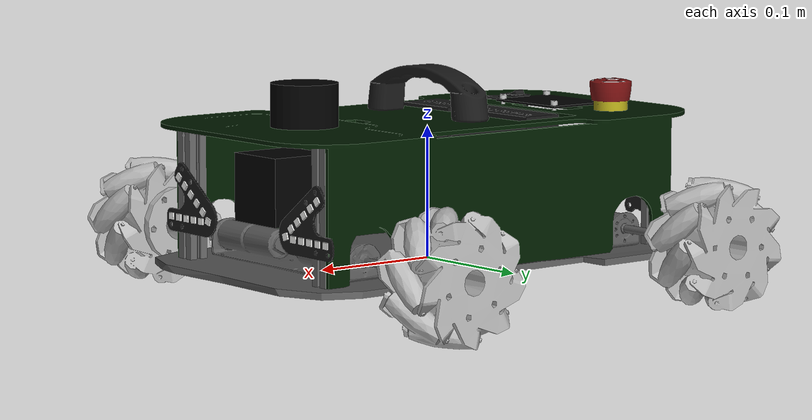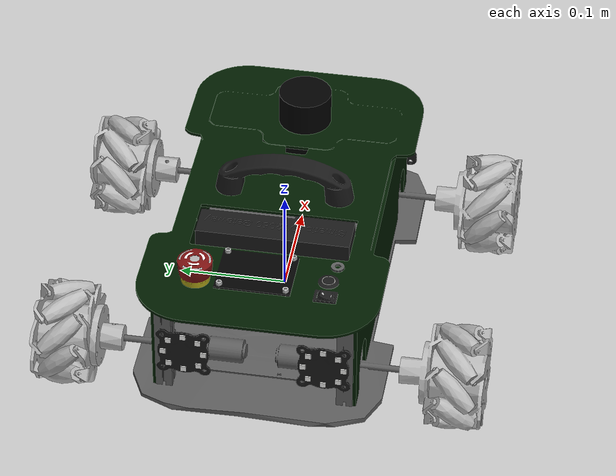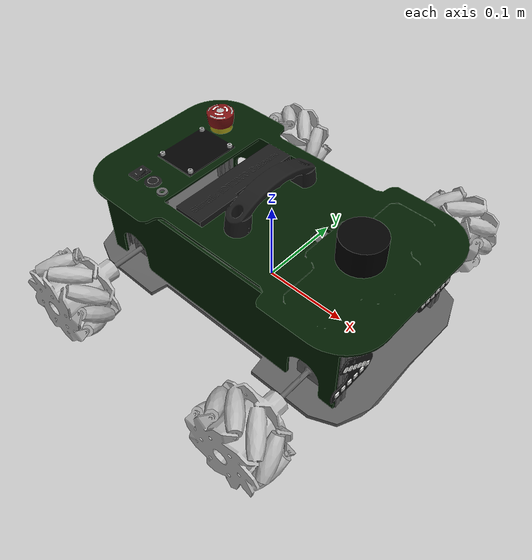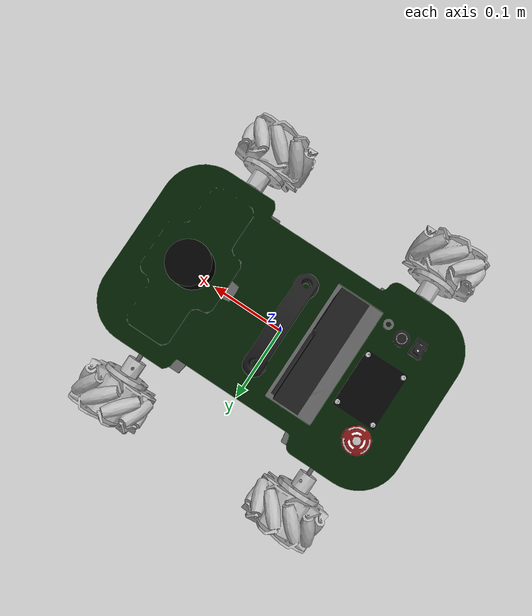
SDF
<?xml version='1.0'?>
<sdf version='1.5'>
  <model name="eduard-green-mecanum">
    <static>true</static>
    <pose>0 0 0 0 0 0</pose>
      <!-- chassis -->
      <link name="chassis">
        <pose>0 0 0 0 0 0</pose>
        <inertial>
          <pose>0 0 0 0 0 0</pose>
          <mass>5.0</mass>
          <inertia>
            <ixx>0.00276</ixx>
            <iyy>0.00882</iyy>
            <izz>0.01119</izz>
            <ixy>0</ixy>
            <ixz>0</ixz>
            <iyz>0</iyz>
          </inertia>
        </inertial>
        <visual name="visual">
          <pose>0 0 0 0 0 1.570796327</pose>
          <geometry>
            <mesh>
              <uri>model://eduard_green_mecanum/mesh/eduard-green-chassis.dae</uri>
            </mesh>
          </geometry>
        </visual>
        <collision name="collision_bottom">
          <pose>0 0 0.01 0 0 0</pose>
          <geometry>
            <box>
              <size>0.38 0.22 0.02</size>
            </box>
          </geometry>
        </collision>
        <collision name="collision_top">
          <pose>0 0 0.1 0 0 0</pose>
          <geometry>
            <box>
              <size>0.38 0.22 0.02</size>
            </box>
          </geometry>
        </collision>
      </link>

      <!-- wheel rear right -->
      <link name="motor_a">
        <pose>-0.125 -0.18 0.02 -1.570796327 0 0</pose>
        <inertial>
          <pose>0 0 0 0 0 0</pose>
          <mass>0.3</mass>
          <inertia>
            <ixx>3.0e-5</ixx>
            <iyy>3.0e-5</iyy>
            <izz>5.0e-5</izz>
            <ixy>0</ixy>
            <ixz>0</ixz>
            <iyz>0</iyz>
          </inertia>
        </inertial>
        <visual name="visual">
          <geometry>
            <mesh>
              <uri>model://eduard_blue_mecanum/mesh/mecanum-wheel-left-eduard.dae</uri>
            </mesh>
          </geometry>
        </visual>
        <collision name="collision">
          <pose>0 0 0 0 0 0</pose>
          <geometry>
            <cylinder>
              <radius>0.05</radius>
              <length>0.055</length>
            </cylinder>
          </geometry>
          <max_contacts>2</max_contacts>
          <surface>
            <friction>
              <torsional>
                <coefficient>0.9</coefficient>
                <surface_radius>0.01</surface_radius>
                <use_patch_radius>true</use_patch_radius>
                <ode>
                  <slip>0.2</slip>
                </ode>
              </torsional>
            </friction>
            <contact>
              <ode>
                <min_depth>0.005</min_depth>
              </ode>
            </contact>
          </surface>
        </collision>
      </link>

      <!-- wheel front right -->
      <link name="motor_b">
        <pose>0.125 -0.18 0.02 -1.570796327 0 0</pose>
        <inertial>
          <pose>0 0 0 0 0 0</pose>
          <mass>0.3</mass>
          <inertia>
            <ixx>3.0e-5</ixx>
            <iyy>3.0e-5</iyy>
            <izz>5.0e-5</izz>
            <ixy>0</ixy>
            <ixz>0</ixz>
            <iyz>0</iyz>
          </inertia>
        </inertial>
        <visual name="visual">
          <geometry>
            <mesh>
              <uri>model://eduard_blue_mecanum/mesh/mecanum-wheel-right-eduard.dae</uri>
            </mesh>
          </geometry>
        </visual>
        <collision name="collision">
          <pose>0 0 0 0 0 0</pose>
          <geometry>
            <cylinder>
              <radius>0.05</radius>
              <length>0.055</length>
            </cylinder>
          </geometry>
          <max_contacts>2</max_contacts>
          <surface>
            <friction>
              <torsional>
                <coefficient>0.9</coefficient>
                <surface_radius>0.01</surface_radius>
                <use_patch_radius>true</use_patch_radius>
                <ode>
                  <slip>0.2</slip>
                </ode>
              </torsional>
            </friction>
            <contact>
              <ode>
                <min_depth>0.005</min_depth>
              </ode>
            </contact>
          </surface>
        </collision>
      </link>

      <!-- wheel rear left -->
      <link name="motor_c">
        <pose>-0.125 0.18 0.02 1.570796327 0 0</pose>
        <inertial>
          <pose>0 0 0 0 0 0</pose>
          <mass>0.3</mass>
          <inertia>
            <ixx>3.0e-5</ixx>
            <iyy>3.0e-5</iyy>
            <izz>5.0e-5</izz>
            <ixy>0</ixy>
            <ixz>0</ixz>
            <iyz>0</iyz>
          </inertia>
        </inertial>
        <visual name="visual">
          <geometry>
            <mesh>
              <uri>model://eduard_blue_mecanum/mesh/mecanum-wheel-right-eduard.dae</uri>
            </mesh>
          </geometry>
        </visual>
        <collision name="collision">
          <pose>0 0 0 0 0 0</pose>
          <geometry>
            <cylinder>
              <radius>0.05</radius>
              <length>0.055</length>
            </cylinder>
          </geometry>
          <max_contacts>2</max_contacts>
          <surface>
            <friction>
              <torsional>
                <coefficient>0.9</coefficient>
                <surface_radius>0.01</surface_radius>
                <use_patch_radius>true</use_patch_radius>
                <ode>
                  <slip>0.2</slip>
                </ode>
              </torsional>
            </friction>
            <contact>
              <ode>
                <min_depth>0.005</min_depth>
              </ode>
            </contact>
          </surface>
        </collision>
      </link>

      <!-- wheel front left -->
      <link name="motor_d">
        <pose>0.125 0.18 0.02 1.570796327 0 0</pose>
        <inertial>
          <pose>0 0 0 0 0 0</pose>
          <mass>0.3</mass>
          <inertia>
            <ixx>3.0e-5</ixx>
            <iyy>3.0e-5</iyy>
            <izz>5.0e-5</izz>
            <ixy>0</ixy>
            <ixz>0</ixz>
            <iyz>0</iyz>
          </inertia>
        </inertial>
        <visual name="visual">
          <geometry>
            <mesh>
              <uri>model://eduard_blue_mecanum/mesh/mecanum-wheel-left-eduard.dae</uri>
            </mesh>
          </geometry>
        </visual>
        <collision name="collision">
          <pose>0 0 0 0 0 0</pose>
          <geometry>
            <cylinder>
              <radius>0.05</radius>
              <length>0.055</length>
            </cylinder>
          </geometry>
          <max_contacts>2</max_contacts>
          <surface>
            <friction>
              <torsional>
                <coefficient>0.9</coefficient>
                <surface_radius>0.01</surface_radius>
                <use_patch_radius>true</use_patch_radius>
                <ode>
                  <slip>0.2</slip>
                </ode>
              </torsional>
            </friction>
            <contact>
              <ode>
                <min_depth>0.005</min_depth>
              </ode>
            </contact>
          </surface>
        </collision>
      </link>

      <!-- Range Sensors -->
      <!-- Front Left-->
      <link name="range_front_left">
        <pose>0.17 0.063 0.045 0 0 0</pose>
        <inertial>
          <pose>0 0 0 0 0 0</pose>
          <mass>0.1</mass>
          <inertia>
            <ixx>3.0e-6</ixx>
            <iyy>3.0e-6</iyy>
            <izz>5.0e-6</izz>
            <ixy>0</ixy>
            <ixz>0</ixz>
            <iyz>0</iyz>
          </inertia>
        </inertial>
        <sensor name="range/front/left" type="ray">
          <visualize>false</visualize>
          <ray>
            <scan>
              <horizontal>
                <min_angle>-0.08726646</min_angle>
                <max_angle> 0.08726646</max_angle>
                <samples>4</samples>
              </horizontal>
              <vertical>
                <min_angle>-0.04363323</min_angle>
                <max_angle> 0.04363323</max_angle>
                <samples>2</samples>
              </vertical>
            </scan>
            <range>
              <min>0.01</min>
              <max>2.0</max>
            </range>
            <noise>
              <type>gaussian</type>
              <stddev>0.0025</stddev>
            </noise>
          </ray>
        </sensor>
      </link>
      <!-- Front Right-->
      <link name="range_front_right">
        <pose>0.17 -0.063 0.045 0 0 0</pose>
        <inertial>
          <pose>0 0 0 0 0 0</pose>
          <mass>0.1</mass>
          <inertia>
            <ixx>3.0e-6</ixx>
            <iyy>3.0e-6</iyy>
            <izz>5.0e-6</izz>
            <ixy>0</ixy>
            <ixz>0</ixz>
            <iyz>0</iyz>
          </inertia>
        </inertial>
        <sensor name="range/front/right" type="ray">
          <visualize>false</visualize>
          <ray>
            <scan>
              <horizontal>
                <min_angle>-0.08726646</min_angle>
                <max_angle> 0.08726646</max_angle>
                <samples>4</samples>
              </horizontal>
              <vertical>
                <min_angle>-0.04363323</min_angle>
                <max_angle> 0.04363323</max_angle>
                <samples>2</samples>
              </vertical>
            </scan>
            <range>
              <min>0.01</min>
              <max>2.0</max>
            </range>
            <noise>
              <type>gaussian</type>
              <stddev>0.0025</stddev>
            </noise>
          </ray>
        </sensor>
      </link>
      <!-- Rear Left -->
      <link name="range_rear_left">
        <pose>-0.17 0.063 0.05 0 0 3.141592654</pose>
        <inertial>
          <pose>0 0 0 0 0 0</pose>
          <mass>0.1</mass>
          <inertia>
            <ixx>3.0e-6</ixx>
            <iyy>3.0e-6</iyy>
            <izz>5.0e-6</izz>
            <ixy>0</ixy>
            <ixz>0</ixz>
            <iyz>0</iyz>
          </inertia>
        </inertial>
        <sensor name="range/rear/left" type="ray">
          <visualize>false</visualize>
          <ray>
            <scan>
              <horizontal>
                <min_angle>-0.08726646</min_angle>
                <max_angle> 0.08726646</max_angle>
                <samples>4</samples>
              </horizontal>
              <vertical>
                <min_angle>-0.04363323</min_angle>
                <max_angle> 0.04363323</max_angle>
                <samples>2</samples>
              </vertical>
            </scan>
            <range>
              <min>0.01</min>
              <max>2.0</max>
            </range>
            <noise>
              <type>gaussian</type>
              <stddev>0.0025</stddev>
            </noise>
          </ray>
        </sensor>
      </link>
      <!-- Rear Right-->
      <link name="range_rear_right">
        <pose>-0.17 -0.063 0.05 0 0 3.141592654</pose>
        <inertial>
          <pose>0 0 0 0 0 0</pose>
          <mass>0.1</mass>
          <inertia>
            <ixx>3.0e-6</ixx>
            <iyy>3.0e-6</iyy>
            <izz>5.0e-6</izz>
            <ixy>0</ixy>
            <ixz>0</ixz>
            <iyz>0</iyz>
          </inertia>
        </inertial>
        <sensor name="range/rear/right" type="ray">
          <visualize>false</visualize>
          <ray>
            <scan>
              <horizontal>
                <min_angle>-0.08726646</min_angle>
                <max_angle> 0.08726646</max_angle>
                <samples>4</samples>
              </horizontal>
              <vertical>
                <min_angle>-0.04363323</min_angle>
                <max_angle> 0.04363323</max_angle>
                <samples>2</samples>
              </vertical>
            </scan>
            <range>
              <min>0.01</min>
              <max>2.0</max>
            </range>
            <noise>
              <type>gaussian</type>
              <stddev>0.0025</stddev>
            </noise>
          </ray>
        </sensor>
      </link>

      <!-- IMU Sensor -->
      <link name="imu">
        <pose>0 0 0 0 0 0</pose>
        <inertial>
          <pose>0 0 0 0 0 0</pose>
          <mass>0.1</mass>
          <inertia>
            <ixx>3.0e-6</ixx>
            <iyy>3.0e-6</iyy>
            <izz>5.0e-6</izz>
            <ixy>0</ixy>
            <ixz>0</ixz>
            <iyz>0</iyz>
          </inertia>
        </inertial>
        <sensor name="imu" type="imu">
          <update_rate>10</update_rate>
          <visualize>false</visualize>
        </sensor>
      </link>

      <!-- LIDAR Sensor -->
      <link name="lidar">
        <pose>0.115 0 0.12 0 0 0</pose>
        <inertial>
          <inertia>
            <ixx>3.0e-6</ixx>
            <iyy>3.0e-6</iyy>
            <izz>5.0e-6</izz>
            <ixy>0</ixy>
            <ixz>0</ixz>
            <iyz>0</iyz>
          </inertia>
          <mass>0.3</mass>
        </inertial>

        <collision name="collision">
          <geometry>
            <cylinder>
              <radius>0.025</radius>
              <length>0.04</length>
            </cylinder>
          </geometry>
        </collision>

        <visual name="visual">
          <geometry>
            <cylinder>
              <radius>0.025</radius>
              <length>0.04</length>
            </cylinder>
          </geometry>
          <material>
            <ambient>0.0 0.0 0.0 1.0</ambient>
            <diffuse>0.0 0.0 0.0 1.0</diffuse>
            <specular>0.0 0.0 0.0 1.0</specular>
            <emissive>0.0 0.0 0.0 1.0</emissive>
          </material>
        </visual>

        <sensor name="lidar" type="ray">
          <pose>0 0 0.01 0 0 0</pose>
          <always_on>true</always_on>
          <visualize>false</visualize>
          <update_rate>10</update_rate>
          <ray>
            <scan>
              <horizontal>
                <samples>360</samples>
                <resolution>1.00000</resolution>
                <min_angle>0.000000</min_angle>
                <max_angle>6.280000</max_angle>
              </horizontal>
            </scan>
            <range>
              <min>0.15</min>
              <max>12.0</max>
              <resolution>0.015000</resolution>
            </range>
            <noise>
              <type>gaussian</type>
              <mean>0.0</mean>
              <stddev>0.01</stddev>
            </noise>
          </ray>
          <plugin name="eduard_green_scan" filename="libgazebo_ros_ray_sensor.so">
            <ros>
              <remapping>~/out:=/eduard/green/scan</remapping>
            </ros>
            <output_type>sensor_msgs/LaserScan</output_type>
            <frame_name>eduard/green/laser</frame_name>
          </plugin>
        </sensor>
      </link>

      <!-- Oliva Cam -->
      <link name="olive_camera_link_eduard_green">
        <pose>0.135 0 0.065 0 0 0</pose>
        <inertial>
          <inertia>
            <ixx>3.0e-6</ixx>
            <iyy>3.0e-6</iyy>
            <izz>5.0e-6</izz>
            <ixy>0</ixy>
            <ixz>0</ixz>
            <iyz>0</iyz>
          </inertia>
          <mass>0.3</mass>
        </inertial>

        <collision name="collision">
          <geometry>
            <box>
              <size>0.05 0.05 0.05</size>
            </box>
          </geometry>
        </collision>

        <visual name="visual">
          <geometry>
            <box>
              <size>0.05 0.05 0.05</size>
            </box>
          </geometry>
          <material>
            <ambient>0.0 0.0 0.0 1.0</ambient>
            <diffuse>0.0 0.0 0.0 1.0</diffuse>
            <specular>0.0 0.0 0.0 1.0</specular>
            <emissive>0.0 0.0 0.0 1.0</emissive>
          </material>
        </visual>

        <sensor type="camera" name="olive_camera">
          <update_rate>30.0</update_rate>
          <camera name="head">
            <horizontal_fov>1.3962634</horizontal_fov>
            <image>
              <width>1920</width>
              <height>1080</height>
              <format>R8G8B8</format>
            </image>
            <clip>
              <near>0.02</near>
              <far>10</far>
            </clip>
            <noise>
              <type>gaussian</type>
              <mean>0.0</mean>
              <stddev>0.007</stddev>
            </noise>
          </camera>
          <plugin name="eduard_green_camera_controller" filename="libgazebo_ros_camera.so">
            <ros>
              <remapping>/olive_camera/image_raw:=/eduard/green/olive_camera/image_raw</remapping>
              <remapping>/olive_camera/camera_info:=/eduard/green/olive_camera/camera_info</remapping>
            </ros>
            <alwaysOn>true</alwaysOn>
            <updateRate>30.0</updateRate>
            <frameName>eduard/green/olive_cam</frameName>
            <distortionK1>0.0</distortionK1>
            <distortionK2>0.0</distortionK2>
            <distortionK3>0.0</distortionK3>
            <distortionT1>0.0</distortionT1>
            <distortionT2>0.0</distortionT2>
          </plugin>
        </sensor>
      </link>

      <!-- Joints. -->
      <joint type="revolute" name="axis_front_left">
        <pose>0 0 0 0 0 0</pose>
        <child>motor_d</child>
        <parent>chassis</parent>
        <axis>
          <xyz>0 0 1</xyz>
        </axis>
      </joint>
      <joint type="revolute" name="axis_front_right">
        <pose>0 0 0 0 0 0</pose>
        <child>motor_b</child>
        <parent>chassis</parent>
        <axis>
          <xyz>0 0 1</xyz>
        </axis>
      </joint>
      <joint type="revolute" name="axis_rear_left">
        <pose>0 0 0 0 0 0</pose>
        <child>motor_c</child>
        <parent>chassis</parent>
        <axis>
          <xyz>0 0 1</xyz>
        </axis>
      </joint>
      <joint type="revolute" name="axis_rear_right">
        <pose>0 0 0 0 0 0</pose>
        <child>motor_a</child>
        <parent>chassis</parent>
        <axis>
          <xyz>0 0 1</xyz>
        </axis>
      </joint>
      <joint type="fixed" name="mount_range_front_left">
        <child>range_front_left</child>
        <parent>chassis</parent>
      </joint>
      <joint type="fixed" name="mount_range_front_right">
        <child>range_front_right</child>
        <parent>chassis</parent>
      </joint>
      <joint type="fixed" name="mount_range_rear_left">
        <child>range_rear_left</child>
        <parent>chassis</parent>
      </joint>
      <joint type="fixed" name="mount_range_rear_right">
        <child>range_rear_right</child>
        <parent>chassis</parent>
      </joint>
      <joint type="fixed" name="mount_imu">
        <child>imu</child>
        <parent>chassis</parent>
      </joint>
      <joint type="fixed" name="mount_lidar">
        <child>lidar</child>
        <parent>chassis</parent>
      </joint>
      <joint type="fixed" name="mount_olive_cam">
        <child>olive_camera_link_eduard_green</child>
        <parent>chassis</parent>
      </joint>

      <!-- plugins to control robot behavior -->
     <plugin name="eduard_robot_green_olive_cam" filename="libeduard-model-plugin.so">
       <robot_namespace>/eduard/green</robot_namespace>
     </plugin>
    </model>
</sdf>
